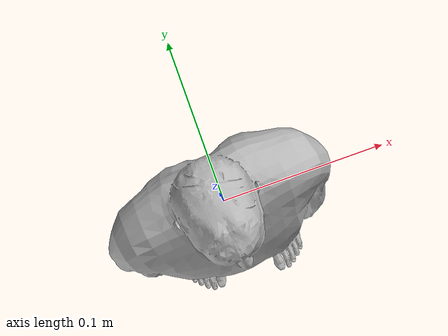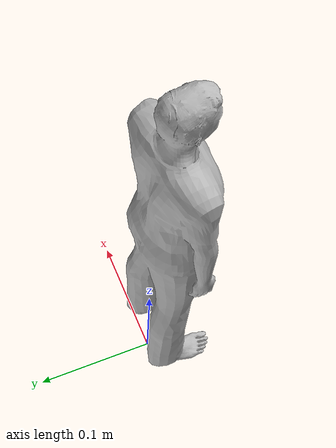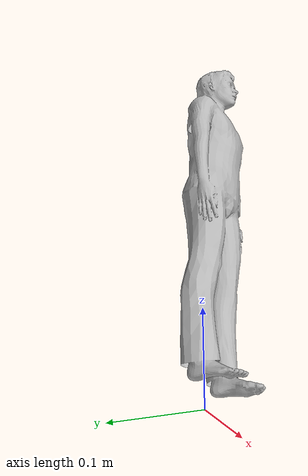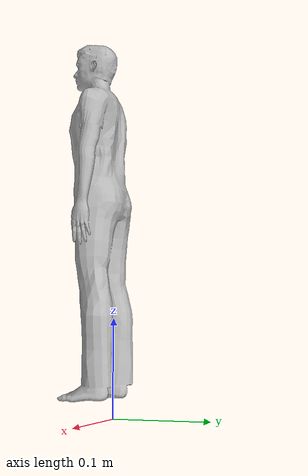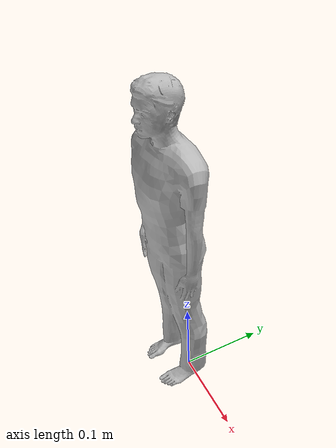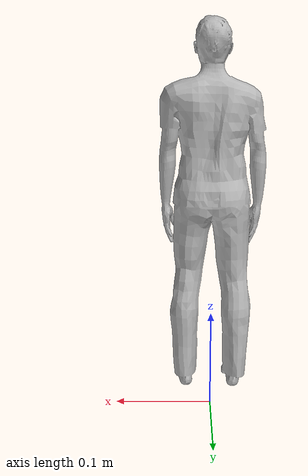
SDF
<?xml version="1.0"?>
<sdf version="1.5">
  <model name="person_standing">
    <static>true</static>
    <link name="link">
      <inertial>
        <pose>0 -0.1 0.95 0 0 0</pose>
        <mass>80.0</mass>
        <inertia>
          <ixx>24.88</ixx>
          <ixy>0</ixy>
          <ixz>0</ixz>
          <iyy>25.73</iyy>
          <iyz>0</iyz>
          <izz>2.48</izz>
        </inertia>
      </inertial>
      <collision name="bottom">
        <pose>0 -0.1 -0.02 0 0 0</pose>
        <geometry>
          <box>
            <size>0.5 0.35 0.05</size>
          </box>
        </geometry>
      </collision>
      <collision name="person">
        <pose>0 0 0.02 0.04 0 0</pose>
        <geometry>
          <mesh>
            <uri>model://person_standing/meshes/standing.dae</uri>
            <scale>0.2 0.2 0.2</scale>
          </mesh>
        </geometry>
      </collision>
      <visual name="visual">
        <pose>0 0 0.02 0.04 0 0</pose>
        <geometry>
          <mesh>
            <uri>model://person_standing/meshes/standing.dae</uri>
            <scale>0.2 0.2 0.2</scale>
          </mesh>
        </geometry>
      </visual>
    </link>
  </model>
</sdf>
